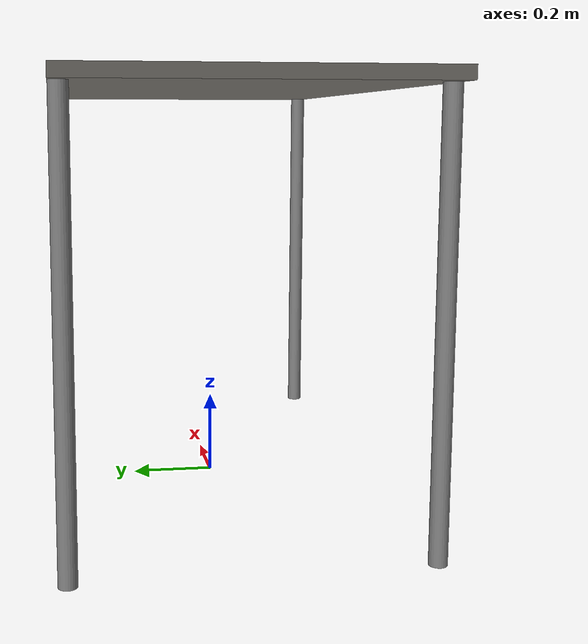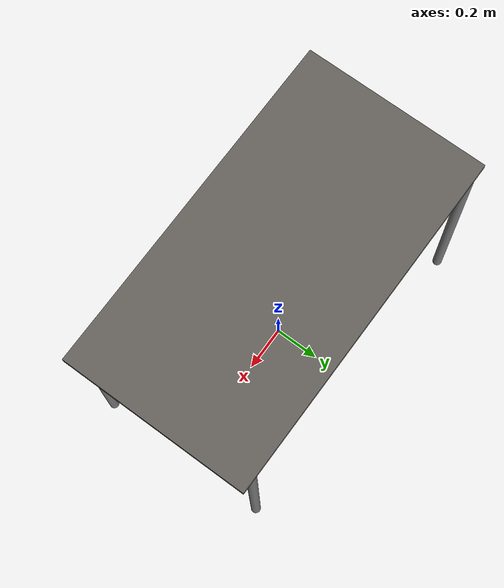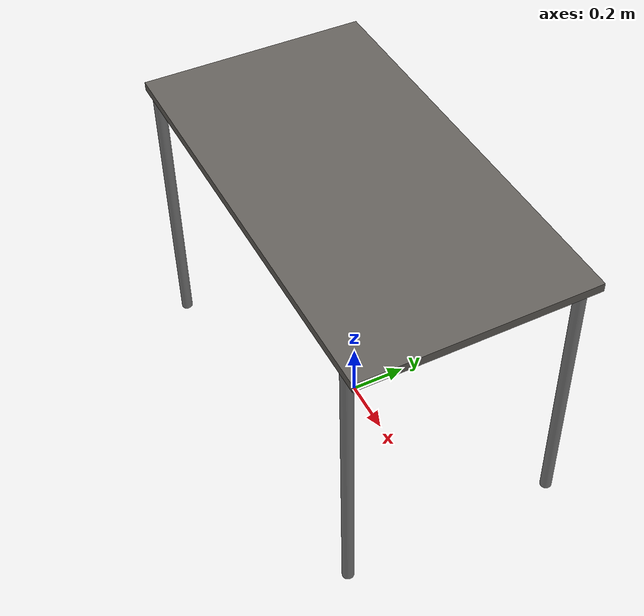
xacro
<?xml version="1.0" encoding="utf-8"?>
<robot name="table" xmlns:xacro="http://www.ros.org/wiki/xacro">

  <!-- Table Top -->
  <link name="table_top">
    <visual>
      <origin xyz="0 0 1.0"/>
      <geometry>
        <box size="1.5 0.8 0.03"/>
      </geometry>
      <material name="">
        <color rgba="0.388 0.376 0.357 1"/>
      </material>
    </visual>
    <collision>
      <origin xyz="0 0 1.0"/>
      <geometry>
        <box size="1.5 0.8 0.03"/>
      </geometry>
    </collision>
    <inertial>
      <origin xyz="0 0 1.0"/>
      <mass value="5.0"/>
      <inertia ixx="0.1" ixy="0" ixz="0" iyy="0.1" iyz="0" izz="0.1"/>
    </inertial>
  </link>

  <!-- Make table static in Gazebo and improve contact -->
  <gazebo reference="table_top">
    <static>true</static>
    <surface>
      <contact>
        <ode>
          <kp>100000.0</kp>
          <kd>1000.0</kd>
        </ode>
      </contact>
      <friction>
        <ode>
          <mu>1.0</mu>
          <mu2>1.0</mu2>
        </ode>
      </friction>
    </surface>
  </gazebo>

  <!-- Table Legs Macro -->
  <xacro:macro name="table_leg" params="leg_name x y">
    <link name="${leg_name}">
      <visual>
        <origin xyz="0 0 0.5"/>
        <geometry>
          <cylinder radius="0.02" length="1.0"/>
        </geometry>
        <material name="">
          <color rgba="0.5 0.5 0.5 1"/>
        </material>
      </visual>
      <collision>
        <origin xyz="0 0 0.5"/>
        <geometry>
          <cylinder radius="0.02" length="1.0"/>
        </geometry>
      </collision>
      <inertial>
        <origin xyz="0 0 0.5"/>
        <mass value="1.0"/>
        <inertia ixx="0.01" ixy="0" ixz="0" iyy="0.01" iyz="0" izz="0.01"/>
      </inertial>
    </link>

    <joint name="${leg_name}_joint" type="fixed">
      <parent link="table_top"/>
      <child link="${leg_name}"/>
      <origin xyz="${x} ${y} 0.0"/>
    </joint>
  </xacro:macro>

  <!-- Four Legs -->
  <xacro:table_leg leg_name="front_left_leg"  x=" 0.68" y=" 0.38"/>
  <xacro:table_leg leg_name="front_right_leg" x=" 0.68" y="-0.38"/>
  <xacro:table_leg leg_name="back_left_leg"   x="-0.68" y=" 0.38"/>
  <xacro:table_leg leg_name="back_right_leg"  x="-0.68" y="-0.38"/>

</robot>
